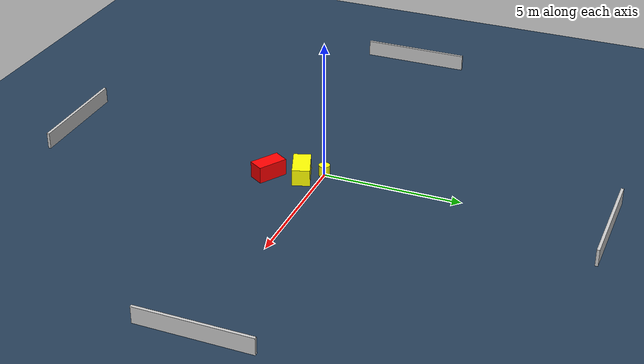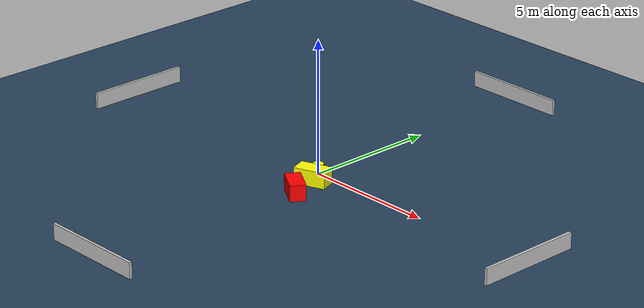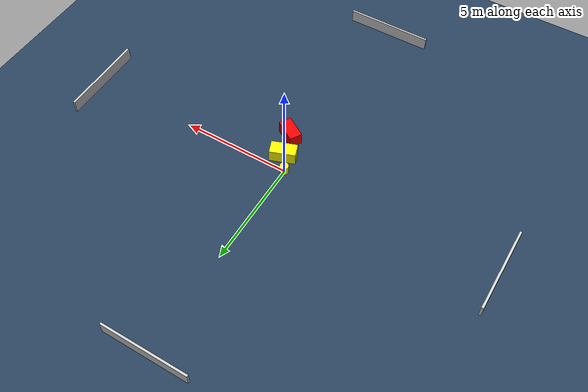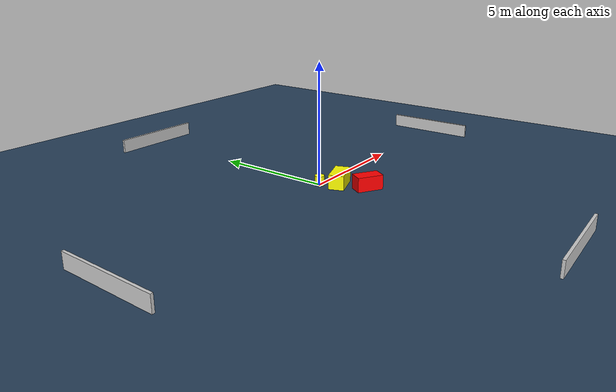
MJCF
<?xml version="1.0" ?>
<mujoco model="generated_environment">
  <option timestep="0.01" integrator="RK4" cone="elliptic"/>
  <default>
    <geom density="1"/>
  </default>
  <asset>
    <texture builtin="gradient" height="3072" name="skybox" rgb1="0.3 0.5 0.7" rgb2="0 0 0" type="skybox" width="512"/>
    <texture builtin="checker" height="300" name="groundplane" rgb1="0.2 0.3 0.4" rgb2="0.1 0.2 0.3" type="2d" width="300"/>
    <material name="groundplane" reflectance="0.2" texrepeat="5 5" texture="groundplane"/>
  </asset>
  <worldbody>
    <light dir="0 0 -1" directional="true" pos="0 0 1.5"/>
    <geom condim="3" friction="0.5 0.005 0.001" material="groundplane" name="floor" pos="0 0 0" size="0 0 0.05" type="plane"/>
    <body name="walls">
      <geom name="wall_1" condim="4" pos="-10.0 0.0 0.3" rgba="0.800000011920929 0.800000011920929 0.800000011920929 1.0" size="0.05 2.0 0.3" type="box"/>
      <geom name="wall_2" condim="4" pos="10.0 0.0 0.3" rgba="0.800000011920929 0.800000011920929 0.800000011920929 1.0" size="0.05 2.0 0.3" type="box"/>
      <geom name="wall_3" condim="4" pos="0.0 -10.0 0.3" rgba="0.800000011920929 0.800000011920929 0.800000011920929 1.0" size="2.0 0.05 0.3" type="box"/>
      <geom name="wall_4" condim="4" pos="0.0 10.0 0.3" rgba="0.800000011920929 0.800000011920929 0.800000011920929 1.0" size="2.0 0.05 0.3" type="box"/>
    </body>
    <body name="robot">
      <joint name="joint_x" type="slide" pos="0 0 0" axis="1 0 0"/>
      <joint name="joint_y" type="slide" pos="0 0 0" axis="0 1 0"/>
      <geom name="robot" type="cylinder" pos="0.0 0.0 0.2" size="0.2 0.2 0.0" mass="5.0" friction="1.0 0.005 0.0001" condim="4" rgba="1.0 1.0 0.0 1.0"/>
    </body>
    <body name="obstacle_1_movable">
      <geom name="obstacle_1_movable" condim="4" pos="0.4503569196914294 -0.6709526079739695 0.3" euler="0 0 290.2470642235642" friction="0.0 0.005 0.001" rgba="1.0 1.0 0.0 1.0" size="0.31274959150251563 0.5910683413685223 0.3" type="box" mass="0.1"/>
      <joint type="free"/>
    </body>
    <body name="obstacle_2_static">
      <geom name="obstacle_2_static" condim="4" pos="0.7701364623783553 -1.7945230125792977 0.3" euler="0 0 148.14606729950933" friction="0.0 0.005 0.001" rgba="1.0 0.0 0.0 1.0" size="0.5437290434652859 0.28827466606016366 0.3" type="box"/>
    </body>
  </worldbody>
  <actuator>
    <motor name="actuator_x" joint="joint_x" gear="1" ctrlrange="-1 1"/>
    <motor name="actuator_y" joint="joint_y" gear="1" ctrlrange="-1 1"/>
  </actuator>
</mujoco>
